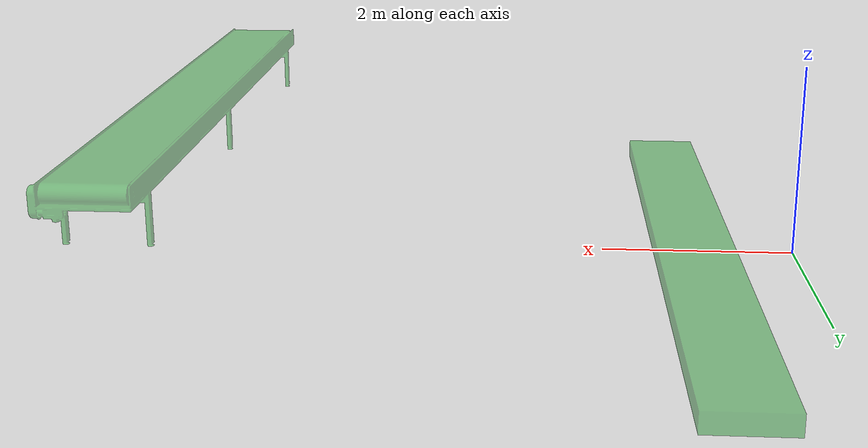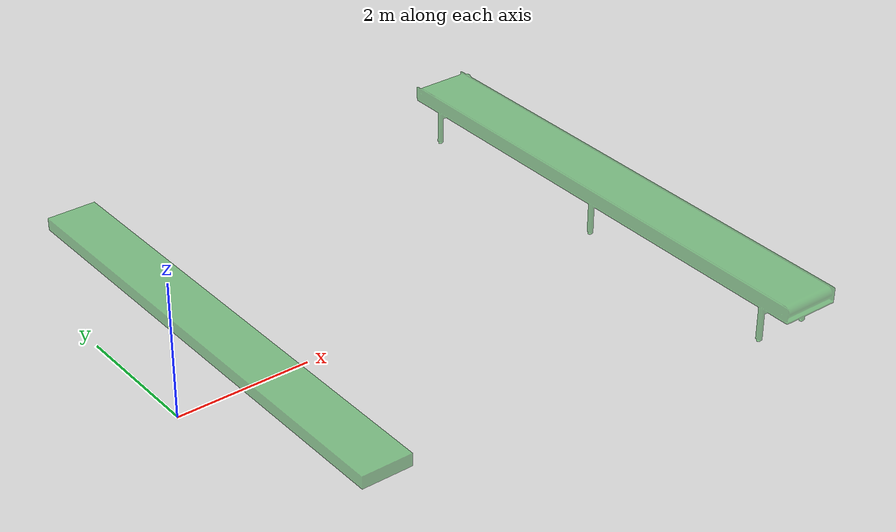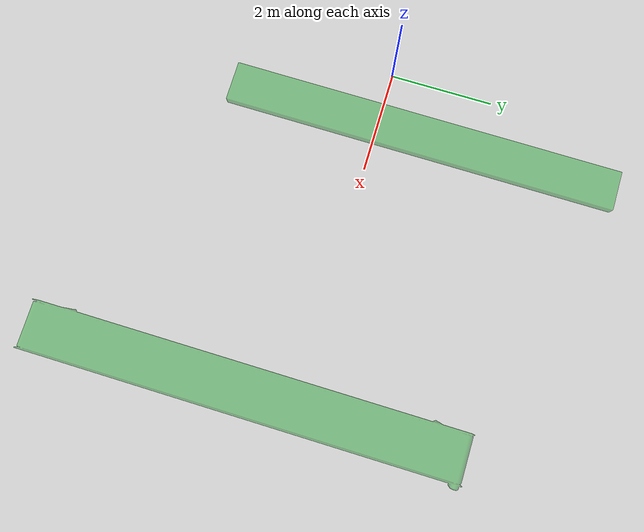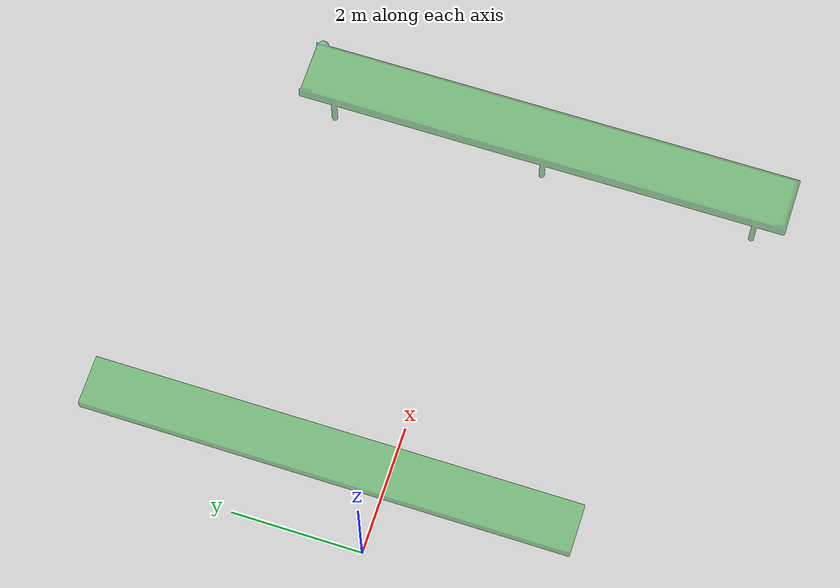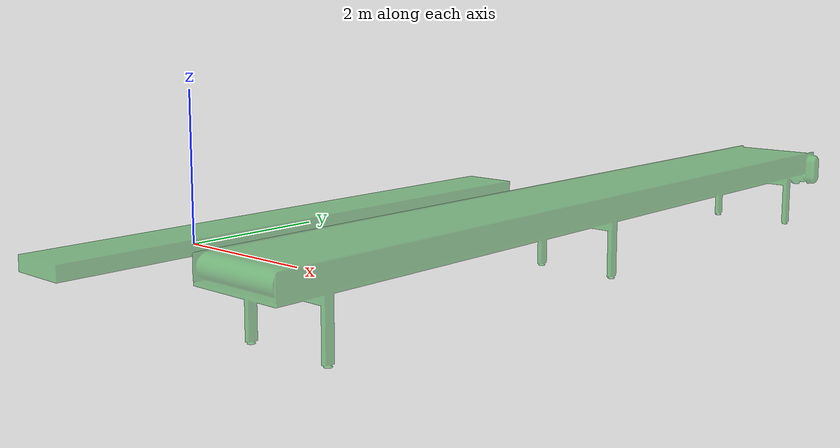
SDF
<?xml version="1.0" ?>
<sdf version="1.6">
    <model name="conveyor_belt">
      <!-- Fixed frame that can be used to refer to the belt's global pose -->
      <model name="conveyor_belt_fixed">
        <static>true</static>
        <pose>1.16 4.2 0.8 0 0 -1.57079</pose>
        <link name="link">
          <pose>0 0 0 0 0 0</pose>

          <visual name="belt_fixed_visual">
            <geometry>
              <mesh>
                <uri>file://kinect/meshes/conveyor_belt.dae</uri>
              </mesh>
            </geometry>
            <material>
              <script>
                <uri>file://media/materials/scripts/gazebo.material</uri>
                <name>Gazebo/GreenTransparent</name>
              </script>
            </material>
          </visual>
        </link>
      </model>

      <!-- Moving component that extends and resets a prismatic joint -->
      <model name="conveyor_belt_moving">
        <allow_auto_disable>0</allow_auto_disable>
        <static>false</static>
        <pose>1.16 -4.12 0.35 0 0 -1.57079</pose>
        <link name="belt">
          <pose>-5 0 0 0 0 0</pose>
          <inertial>
            <inertia>
              <ixx>3.8185</ixx>
              <ixy>0</ixy>
              <ixz>0</ixz>
              <iyy>1781.5</iyy>
              <iyz>0</iyz>
              <izz>1784.72</izz>
            </inertia>
            <mass>100</mass>
          </inertial>
          <!--Uncomment for debugging -->

          <visual name="belt_visual">
            <geometry>
              <box>
                <size>7.5 0.75461 0.18862</size>
              </box>
            </geometry>
            <material>
              <script>
                <uri>file://media/materials/scripts/gazebo.material</uri>
                <name>Gazebo/GreenTransparent</name>
              </script>
            </material>
          </visual>

          <collision name="belt_collision">
            <geometry>
              <box>
                <size>7.5 0.75461 0.18862</size>
              </box>
            </geometry>
            <surface>
              <friction>
                <ode>
                  <mu>1.0</mu>
                  <mu2>1.0</mu2>
                </ode>
                <torsional>
                  <coefficient>1000.0</coefficient>
                  <patch_radius>0.1</patch_radius>
                </torsional>
              </friction>
            </surface>
          </collision>
        </link>
      </model>

      <joint name="belt_joint" type="prismatic">
        <parent>conveyor_belt_fixed::link</parent>
        <child>conveyor_belt_moving::belt</child>
        <axis>
          <xyz>1 0 0</xyz>
          <limit>
            <lower>0</lower>
            <upper>1.0</upper>
          </limit>
        </axis>
      </joint>

      <plugin name="conveyor_belt_plugin" filename="libROSConveyorBeltPlugin.so">
        <robot_namespace>/nrmk</robot_namespace>
        <enable_topic>/nrmk/conveyor_enable</enable_topic>
        <population_rate_modifier_topic>/nrmk/population/rate_modifier</population_rate_modifier_topic>
        <link>conveyor_belt::conveyor_belt_moving::belt</link>
        <power>0</power>
        <update_rate>10</update_rate>
      </plugin>
    </model>
</sdf>
